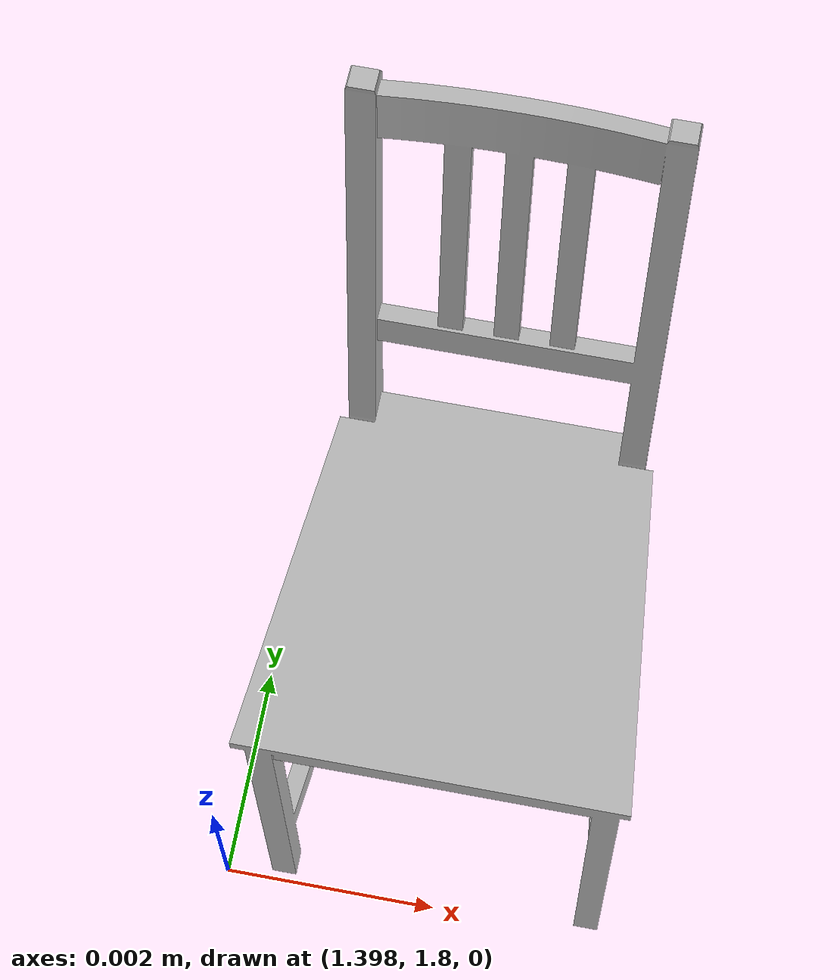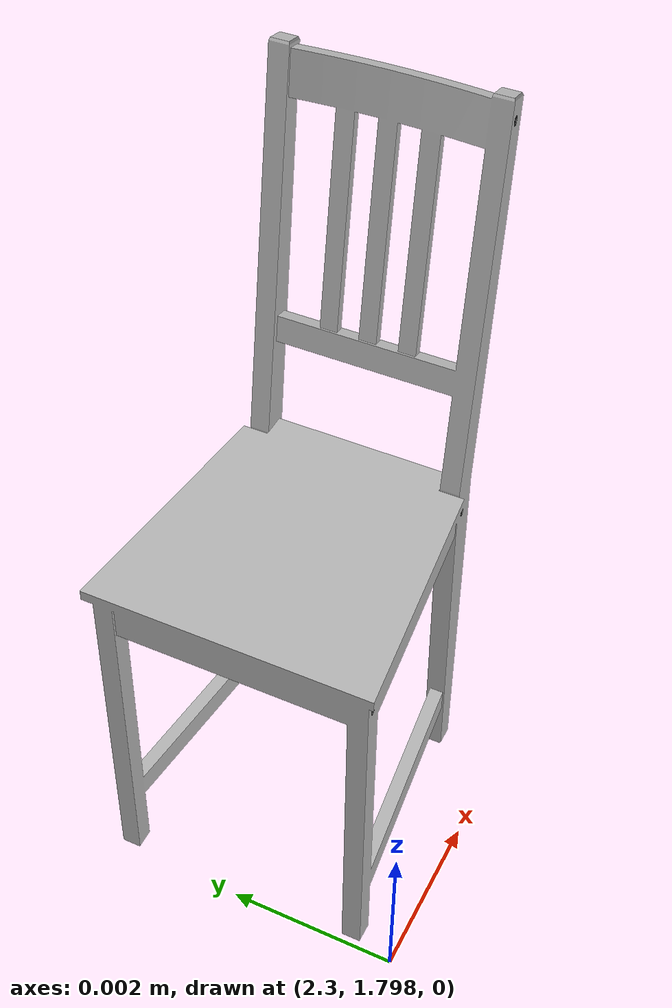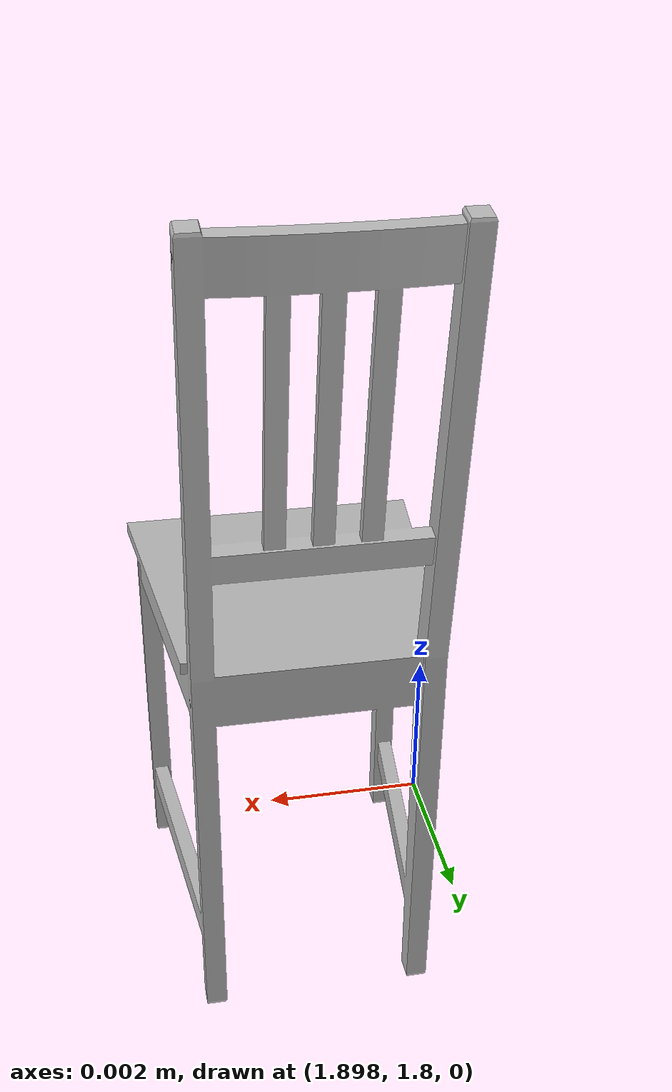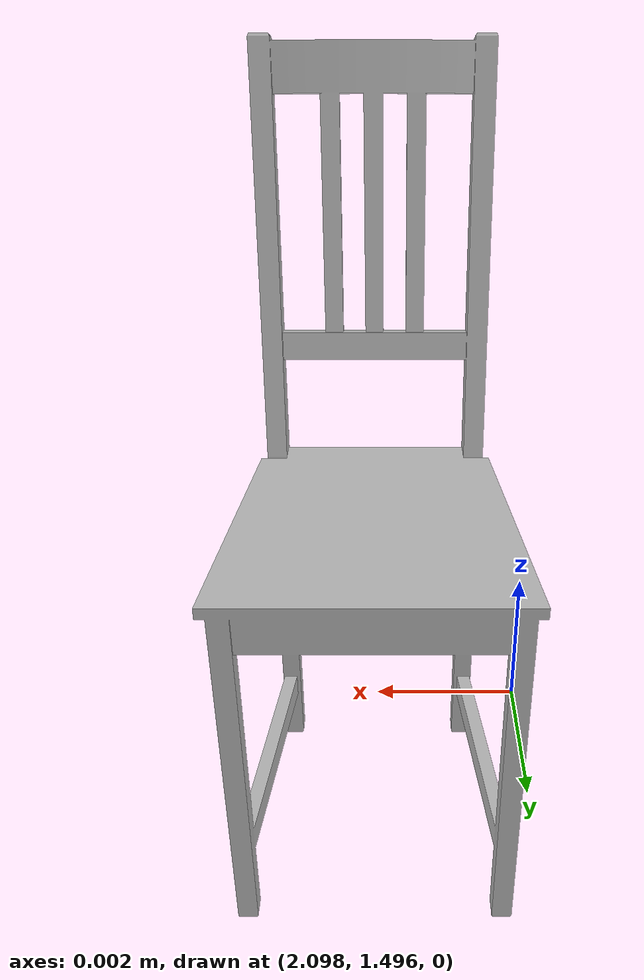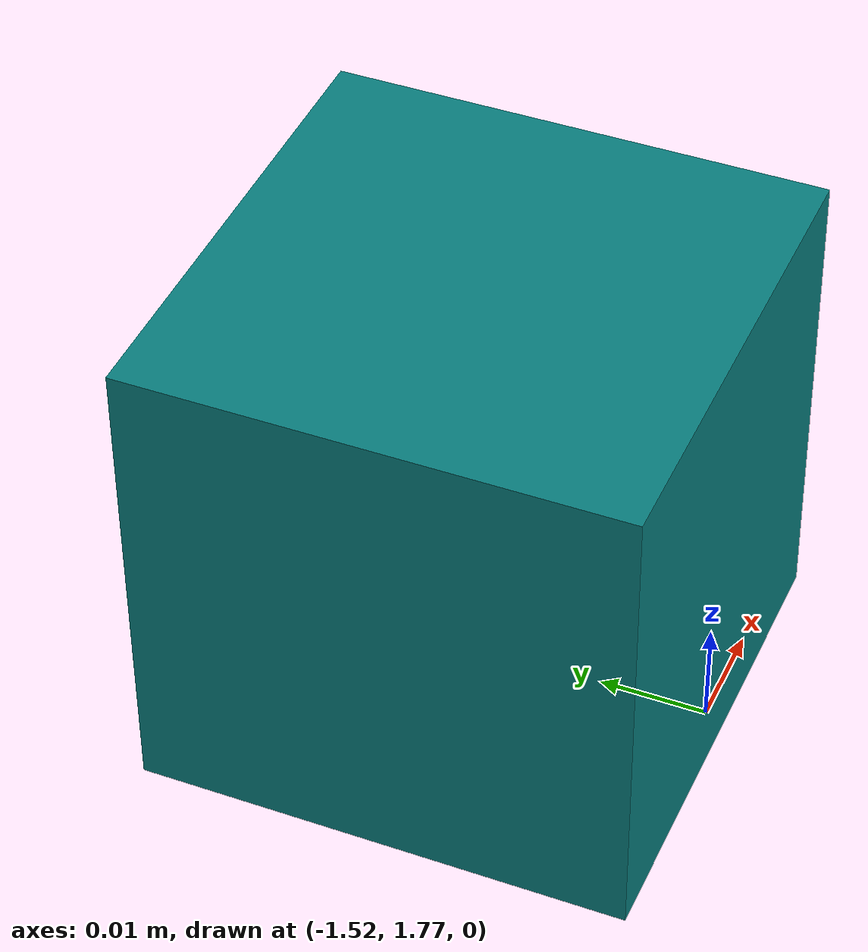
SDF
<?xml version="1.0" ?>
<sdf version="1.3">
    <world name="default">
        <scene>
            <ambient>0.2 0.2 0.2 1</ambient>
            <background>0.5 0.5 0.5 1</background>
            <shadows>false</shadows>
        </scene>
        <physics type="ode">
            <max_contacts>250</max_contacts>
            <ode>
                <solver>
                    <type>quick</type>
                    <dt>0.001</dt>
                    <iters>20</iters>
                    <sor>1.3</sor>
                </solver>
                <constraints>
                    <cfm>0</cfm>
                    <erp>0.2</erp>
                    <contact_max_correcting_vel>100.0</contact_max_correcting_vel>
                    <contact_surface_layer>0.0</contact_surface_layer>
                </constraints>
            </ode>
            <gravity>0.0000 0 0</gravity>
        </physics>
        <model name="model_1">
            <pose>-1.5 1.8 0.0 0.0 0.0 0.0</pose>
            <link name="link_1">
                <pose>0.0 0.0 0.0 0.0 0.0 0.0</pose>
                <inertial>
                    <pose>0.0 0.0 0.0 0.0 0.0 0.0</pose>
                    <damping linear="0.0" angular="0.0" />
                    <inertia>
                        <ixx>1.0</ixx>
                        <ixy>0.0</ixy>
                        <ixz>0.0</ixz>
                        <iyy>1.0</iyy>
                        <iyz>0.0</iyz>
                        <izz>1.0</izz>
                    </inertia>
                    <mass>10.0</mass>
                </inertial>
                <visual name="visual_box">
                    <pose>0.0 0.0 0.0 0.0 0.0 0.0</pose>
                    <geometry>
                        <box>
                            <size>0.05 0.05 0.05</size>
                        </box>
                    </geometry>
                    <material normal_map="normal_map.png">
                        <ambient>0.03 0.5 0.5 1.0</ambient>
                        <script>Gazebo/Red</script>
                    </material>
                    <cast_shadows>false</cast_shadows>
                    <laser_retro>100.0</laser_retro>
                </visual>
                <collision name="collision_box">
                    <pose>0.0 0.0 0.0 0.0 0.0 0.0</pose>
                    <max_contacts>250</max_contacts>
                    <geometry>
                        <box>
                            <size>0.05 0.05 0.05</size>
                        </box>
                    </geometry>
                    <surface>
                        <friction>
                            <ode>
                                <mu>0.5</mu>
                                <mu2>0.2</mu2>
                                <fdir1>1.0 0 0</fdir1>
                                <slip1>0</slip1>
                                <slip2>0</slip2>
                            </ode>
                        </friction>
                        <bounce>
                            <restitution_coefficient>0</restitution_coefficient>
                            <threshold>1000000.0</threshold>
                        </bounce>
                        <contact>
                            <ode>
                                <soft_cfm>0</soft_cfm>
                                <soft_erp>0.2</soft_erp>
                                <kp>1e15</kp>
                                <kd>1e13</kd>
                                <max_vel>100.0</max_vel>
                                <min_depth>0.0001</min_depth>
                            </ode>
                        </contact>
                    </surface>
                    <laser_retro>100.0</laser_retro>
                </collision>
                <sensor name="sensor_ray" type="ray">
                    <pose>0.0 0.0 0.0 0.0 0.0 0.0</pose>
                    <ray>
                        <scan display="true">
                            <horizontal>
                                <samples>300</samples>
                                <resolution>1.0</resolution>
                                <min_angle>-0.5236</min_angle>
                                <max_angle>0.5236</max_angle>
                            </horizontal>
                            <vertical>
                                <samples>100</samples>
                                <resolution>1.0</resolution>
                                <min_angle>-0.5236</min_angle>
                                <max_angle>0.5236</max_angle>
                            </vertical>
                        </scan>
                        <range>
                            <min>0.05</min>
                            <max>50.0</max>
                        </range>
                    </ray>
                    <!-- test plugin -->
                    <plugin name="plugin_1" filename="libgazebo_ros_block_laser.so">
                        <gaussianNoise>0.00</gaussianNoise>
                        <alwaysOn>true</alwaysOn>
                        <updateRate>20</updateRate>
                        <topicName>test_block_laser</topicName>
                        <frameName>/base_link</frameName>
                    </plugin>
                    <always_on>true</always_on>
                    <update_rate>10.0</update_rate>
                </sensor>
                <gravity>false</gravity>
                <self_collide>true</self_collide>
                <kinematic>false</kinematic>
            </link>
            <static>false</static>
        </model>
        <model name="camera_model">
            <pose>-1.5 1.8 0.0 0.0 0.0 0.0</pose>
            <link name="link_1">
                <pose>0.0 0.0 0.0 0.0 0.0 0.0</pose>
                <inertial>
                    <pose>0.0 0.0 0.0 0.0 0.0 0.0</pose>
                    <damping linear="0.0" angular="0.0" />
                    <inertia>
                        <ixx>1.0</ixx>
                        <ixy>0.0</ixy>
                        <ixz>0.0</ixz>
                        <iyy>1.0</iyy>
                        <iyz>0.0</iyz>
                        <izz>1.0</izz>
                    </inertia>
                    <mass>10.0</mass>
                </inertial>
                <visual name="visual_box">
                    <pose>0.0 0.0 0.0 0.0 0.0 0.0</pose>
                    <geometry>
                        <box>
                            <size>0.05 0.05 0.05</size>
                        </box>
                    </geometry>
                    <material normal_map="normal_map.png">
                        <ambient>0.03 0.5 0.5 1.0</ambient>
                        <script>Gazebo/Red</script>
                    </material>
                    <cast_shadows>false</cast_shadows>
                    <laser_retro>100.0</laser_retro>
                </visual>
                <collision name="collision_box">
                    <pose>-1.0 0.0 0.0 0.0 0.0 0.0</pose>
                    <max_contacts>250</max_contacts>
                    <geometry>
                        <box>
                            <size>0.05 0.05 0.05</size>
                        </box>
                    </geometry>
                    <surface>
                        <friction>
                            <ode>
                                <mu>0.5</mu>
                                <mu2>0.2</mu2>
                                <fdir1>1.0 0 0</fdir1>
                                <slip1>0</slip1>
                                <slip2>0</slip2>
                            </ode>
                        </friction>
                        <bounce>
                            <restitution_coefficient>0</restitution_coefficient>
                            <threshold>1000000.0</threshold>
                        </bounce>
                        <contact>
                            <ode>
                                <soft_cfm>0</soft_cfm>
                                <soft_erp>0.2</soft_erp>
                                <kp>1e15</kp>
                                <kd>1e13</kd>
                                <max_vel>100.0</max_vel>
                                <min_depth>0.0001</min_depth>
                            </ode>
                        </contact>
                    </surface>
                    <laser_retro>100.0</laser_retro>
                </collision>
                <sensor name="sensor_camera" type="depth">
                    <pose>0.0 0.0 0.0 0.0 0.0 0.0</pose>
                    <camera>
                        <horizontal_fov>0.9</horizontal_fov>
                        <image>
                            <width>640</width>
                            <height>480</height>
                            <format>R8G8B8</format>
                        </image>
                        <clip near="0.01" far="100.0" />
                        <save enabled="false" path="/tmp" />
                    </camera>
                    <plugin name="plugin_1" filename="libgazebo_ros_depth_camera.so">
                        <alwaysOn>1</alwaysOn>
                        <updateRate>10.0</updateRate>
                        <cameraName>/test_depth</cameraName>
                        <imageTopicName>image_raw</imageTopicName>
                        <pointCloudTopicName>points</pointCloudTopicName>
                        <cameraInfoTopicName>camera_info</cameraInfoTopicName>
                        <frameName>/base_link</frameName>
                    </plugin>
                    <always_on>true</always_on>
                    <update_rate>10.0</update_rate>
                </sensor>
                <gravity>false</gravity>
                <self_collide>true</self_collide>
                <kinematic>false</kinematic>
            </link>
            <static>false</static>
        </model>
        <model name="chair1_model">
            <pose>1.4 1.8 0 0 0 0</pose>
            <link name="chair1_link">
                <inertial>
                    <pose>0 0 0.0 0 0 0</pose>
                    <inertia>
                        <ixx>0.012</ixx>
                        <ixy>0</ixy>
                        <ixz>0</ixz>
                        <iyy>0.015</iyy>
                        <iyz>0</iyz>
                        <izz>0.011</izz>
                    </inertia>
                    <mass>2.0</mass>
                </inertial>
                <collision name="chair1_collision">
                    <geometry>
                        <mesh>
                            <filename>chair3/model/chair.stl</filename>
                            <scale>0.008 0.008 0.01</scale>
                        </mesh>
                    </geometry>
                    <surface>
                        <friction>
                            <ode>
                                <mu>0.0</mu>
                                <mu2>0.0</mu2>
                                <fdir1>0 0 0</fdir1>
                                <slip1>0</slip1>
                                <slip2>0</slip2>
                            </ode>
                        </friction>
                        <bounce>
                            <restitution_coefficient>0</restitution_coefficient>
                            <threshold>1000000.0</threshold>
                        </bounce>
                        <contact>
                            <ode>
                                <soft_cfm>0</soft_cfm>
                                <soft_erp>0.2</soft_erp>
                                <kp>1e10</kp>
                                <kd>1</kd>
                                <max_vel>100.0</max_vel>
                                <min_depth>0.0001</min_depth>
                            </ode>
                        </contact>
                    </surface>
                </collision>
                <visual name="chair1_visual">
                    <geometry>
                        <mesh>
                            <filename>chair3/model/chair.dae</filename>
                            <scale>0.008 0.008 0.01</scale>
                        </mesh>
                    </geometry>
                    <cast_shadows>false</cast_shadows>
                </visual>
            </link>
            <static>true</static>
        </model>
        <model name="chair2_model">
            <pose>1.9 1.8 0 0 0 0</pose>
            <link name="chair2_link">
                <inertial>
                    <pose>0 0 0.0 0 0 0</pose>
                    <inertia>
                        <ixx>0.012</ixx>
                        <ixy>0</ixy>
                        <ixz>0</ixz>
                        <iyy>0.015</iyy>
                        <iyz>0</iyz>
                        <izz>0.011</izz>
                    </inertia>
                    <mass>2.0</mass>
                </inertial>
                <collision name="chair2_collision">
                    <geometry>
                        <mesh>
                            <filename>chair3/model/chair.stl</filename>
                            <scale>0.008 0.008 0.01</scale>
                        </mesh>
                    </geometry>
                    <surface>
                        <friction>
                            <ode>
                                <mu>0.0</mu>
                                <mu2>0.0</mu2>
                                <fdir1>0 0 0</fdir1>
                                <slip1>0</slip1>
                                <slip2>0</slip2>
                            </ode>
                        </friction>
                        <bounce>
                            <restitution_coefficient>0</restitution_coefficient>
                            <threshold>1000000.0</threshold>
                        </bounce>
                        <contact>
                            <ode>
                                <soft_cfm>0</soft_cfm>
                                <soft_erp>0.2</soft_erp>
                                <kp>1e10</kp>
                                <kd>1</kd>
                                <max_vel>100.0</max_vel>
                                <min_depth>0.0001</min_depth>
                            </ode>
                        </contact>
                    </surface>
                </collision>
                <visual name="chair2_visual">
                    <geometry>
                        <mesh>
                            <filename>chair3/model/chair.dae</filename>
                            <scale>0.008 0.008 0.01</scale>
                        </mesh>
                    </geometry>
                    <cast_shadows>false</cast_shadows>
                </visual>
            </link>
            <static>true</static>
        </model>
        <model name="chair3_model">
            <pose>1.6 1.5 0 0 0 3.1416</pose>
            <link name="chair3_link">
                <inertial>
                    <pose>0 0 0.0 0 0 0</pose>
                    <inertia>
                        <ixx>0.012</ixx>
                        <ixy>0</ixy>
                        <ixz>0</ixz>
                        <iyy>0.015</iyy>
                        <iyz>0</iyz>
                        <izz>0.011</izz>
                    </inertia>
                    <mass>2.0</mass>
                </inertial>
                <collision name="chair3_collision">
                    <geometry>
                        <mesh>
                            <filename>chair3/model/chair.stl</filename>
                            <scale>0.008 0.008 0.01</scale>
                        </mesh>
                    </geometry>
                    <surface>
                        <friction>
                            <ode>
                                <mu>0.0</mu>
                                <mu2>0.0</mu2>
                                <fdir1>0 0 0</fdir1>
                                <slip1>0</slip1>
                                <slip2>0</slip2>
                            </ode>
                        </friction>
                        <bounce>
                            <restitution_coefficient>0</restitution_coefficient>
                            <threshold>1000000.0</threshold>
                        </bounce>
                        <contact>
                            <ode>
                                <soft_cfm>0</soft_cfm>
                                <soft_erp>0.2</soft_erp>
                                <kp>1e10</kp>
                                <kd>1</kd>
                                <max_vel>100.0</max_vel>
                                <min_depth>0.0001</min_depth>
                            </ode>
                        </contact>
                    </surface>
                </collision>
                <visual name="chair3_visual">
                    <geometry>
                        <mesh>
                            <filename>chair3/model/chair.dae</filename>
                            <scale>0.008 0.008 0.01</scale>
                        </mesh>
                    </geometry>
                    <cast_shadows>false</cast_shadows>
                </visual>
            </link>
            <static>true</static>
        </model>
        <model name="chair4_model">
            <pose>2.1 1.5 0 0 0 3.1416</pose>
            <link name="chair4_link">
                <inertial>
                    <pose>0 0 0 0 0 0</pose>
                    <inertia>
                        <ixx>0.01</ixx>
                        <ixy>0</ixy>
                        <ixz>0</ixz>
                        <iyy>0.01</iyy>
                        <iyz>0</iyz>
                        <izz>0.01</izz>
                    </inertia>
                    <mass>1.0</mass>
                </inertial>
                <collision name="chair4_collision">
                    <geometry>
                        <mesh>
                            <filename>chair3/model/chair.stl</filename>
                            <scale>0.008 0.008 0.01</scale>
                        </mesh>
                    </geometry>
                    <surface>
                        <friction>
                            <ode>
                                <mu>0.0</mu>
                                <mu2>0.0</mu2>
                                <fdir1>0 0 0</fdir1>
                                <slip1>0</slip1>
                                <slip2>0</slip2>
                            </ode>
                        </friction>
                        <bounce>
                            <restitution_coefficient>0</restitution_coefficient>
                            <threshold>1000000.0</threshold>
                        </bounce>
                        <contact>
                            <ode>
                                <soft_cfm>0</soft_cfm>
                                <soft_erp>0.2</soft_erp>
                                <kp>1e10</kp>
                                <kd>1</kd>
                                <max_vel>100.0</max_vel>
                                <min_depth>0.0001</min_depth>
                            </ode>
                        </contact>
                    </surface>
                </collision>
                <visual name="chair4_visual">
                    <geometry>
                        <mesh>
                            <filename>chair3/model/chair.dae</filename>
                            <scale>0.008 0.008 0.01</scale>
                        </mesh>
                    </geometry>
                    <cast_shadows>false</cast_shadows>
                </visual>
            </link>
            <static>false</static>
        </model>
        <model name="chair5_model">
            <pose>2.3 1.8 0 0 0 -1.57</pose>
            <link name="chair5_link">
                <inertial>
                    <pose>0 0 0 0 0 0</pose>
                    <inertia>
                        <ixx>0.01</ixx>
                        <ixy>0</ixy>
                        <ixz>0</ixz>
                        <iyy>0.01</iyy>
                        <iyz>0</iyz>
                        <izz>0.01</izz>
                    </inertia>
                    <mass>1.0</mass>
                </inertial>
                <collision name="chair5_collision">
                    <geometry>
                        <mesh>
                            <filename>chair3/model/chair.stl</filename>
                            <scale>0.008 0.008 0.01</scale>
                        </mesh>
                    </geometry>
                    <surface>
                        <friction>
                            <ode>
                                <mu>0.0</mu>
                                <mu2>0.0</mu2>
                                <fdir1>0 0 0</fdir1>
                                <slip1>0</slip1>
                                <slip2>0</slip2>
                            </ode>
                        </friction>
                        <bounce>
                            <restitution_coefficient>0</restitution_coefficient>
                            <threshold>1000000.0</threshold>
                        </bounce>
                        <contact>
                            <ode>
                                <soft_cfm>0</soft_cfm>
                                <soft_erp>0.2</soft_erp>
                                <kp>1e10</kp>
                                <kd>1</kd>
                                <max_vel>100.0</max_vel>
                                <min_depth>0.0001</min_depth>
                            </ode>
                        </contact>
                    </surface>
                </collision>
                <visual name="chair5_visual">
                    <geometry>
                        <mesh>
                            <filename>chair3/model/chair.dae</filename>
                            <scale>0.008 0.008 0.01</scale>
                        </mesh>
                    </geometry>
                    <cast_shadows>false</cast_shadows>
                </visual>
            </link>
            <static>false</static>
        </model>
        <light type="point" name="light_1">
            <pose>0.0 0.0 10.0 0.0 0.0 0.0</pose>
            <diffuse>0.5 0.5 0.5 0.5</diffuse>
            <attenuation>
                <range>1000.0</range>
                <constant>0.01</constant>
                <quadratic>0.0001</quadratic>
            </attenuation>
            <direction>0 0 -1</direction>
            <spot>
                <inner_angle>1.57</inner_angle>
                <outer_angle>1.57</outer_angle>
                <falloff>1.0</falloff>
            </spot>
            <cast_shadows>false</cast_shadows>
        </light>
        <plugin name="gazebo_ros_api" filename="libgazebo_ros.so">
            <alwaysOn>1</alwaysOn>
            <updateRate>1000.0</updateRate>
        </plugin>
    </world>
</sdf>
